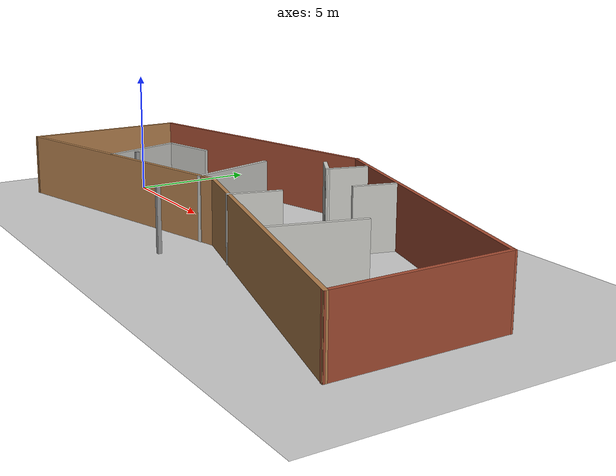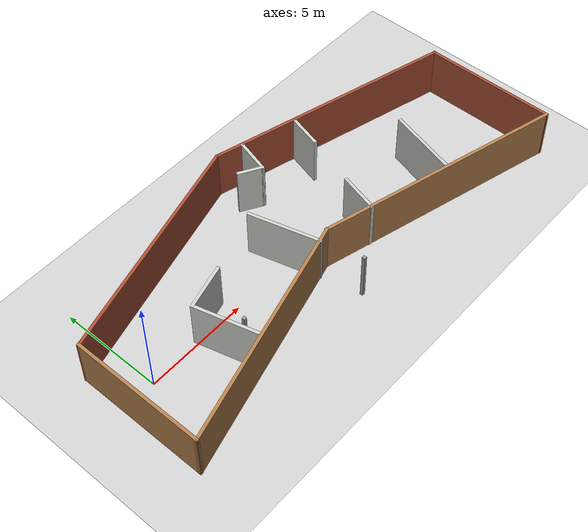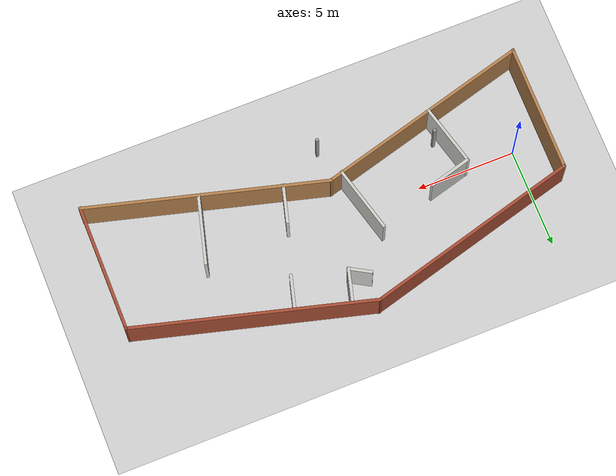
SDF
<sdf version="1.4">
 <world name="default">
  <light name="sun" type="directional">
   <pose>0 0 10 0 -0 0</pose>
   <diffuse>0.8 0.8 0.8 1</diffuse>
   <specular>0.1 0.1 0.1 1</specular>
   <attenuation>
    <range>1000</range>
    <constant>0.9</constant>
    <linear>0.01</linear>
    <quadratic>0.001</quadratic>
   </attenuation>
   <direction>-0.5 0.5 -1</direction>
  </light>
  <model name="ground_plane">
   <static>1</static>
   <link name="link">
    <collision name="collision">
     <geometry><plane><normal>0 0 1</normal><size>100 100</size></plane></geometry>
     <surface><friction><ode><mu>100</mu><mu2>50</mu2></ode></friction></surface>
    </collision>
    <visual name="visual">
     <cast_shadows>0</cast_shadows>
     <geometry><plane><normal>0 0 1</normal><size>100 100</size></plane></geometry>
     <material>
      <script><uri>file://media/materials/scripts/gazebo.material</uri><name>Gazebo/Grey</name></script>
     </material>
    </visual>
   </link>
  </model>
  <physics name="default_physics" default="0" type="ode"><real_time_factor>0</real_time_factor></physics>
  <scene><ambient>0.4 0.4 0.4 1</ambient><background>0.7 0.7 0.7 1</background><shadows>1</shadows></scene>
  <spherical_coordinates>
   <surface_model>EARTH_WGS84</surface_model>
   <latitude_deg>0</latitude_deg>
   <longitude_deg>0</longitude_deg>
   <elevation>0</elevation>
   <heading_deg>0</heading_deg>
  </spherical_coordinates>
  <model name="Maze">
   <pose>9.6093 0.288978 0 0 -0 0</pose>
   <link name="Wall_15">
    <collision name="Wall_15_Collision">
     <geometry><box><size>11.25 0.15 2.5</size></box></geometry>
     <pose>0 0 1.25 0 -0 0</pose>
    </collision>
    <visual name="Wall_15_Visual">
     <pose>0 0 1.25 0 -0 0</pose>
     <geometry><box><size>11.25 0.15 2.5</size></box></geometry>
     <material>
      <script><uri>file://media/materials/scripts/gazebo.material</uri><name>Gazebo/Wood</name></script>
      <ambient>1 1 1 1</ambient>
     </material>
    </visual>
    <pose>-5.84385 -3.04559 0 0 -0 0.261799</pose>
   </link>
   <link name="Wall_16">
    <collision name="Wall_16_Collision">
     <geometry><box><size>12.25 0.15 2.5</size></box></geometry>
     <pose>0 0 1.25 0 -0 0</pose>
    </collision>
    <visual name="Wall_16_Visual">
     <pose>0 0 1.25 0 -0 0</pose>
     <geometry><box><size>12.25 0.15 2.5</size></box></geometry>
     <material>
      <script><uri>file://media/materials/scripts/gazebo.material</uri><name>Gazebo/Wood</name></script>
      <ambient>1 1 1 1</ambient>
     </material>
    </visual>
    <pose>5.36089 -3.175 0 0 0 -0.261799</pose>
   </link>
   <link name="Wall_17">
    <collision name="Wall_17_Collision">
     <geometry><box><size>6.5 0.15 2.5</size></box></geometry>
     <pose>0 0 1.25 0 -0 0</pose>
    </collision>
    <visual name="Wall_17_Visual">
     <pose>0 0 1.25 0 -0 0</pose>
     <geometry><box><size>6.5 0.15 2.5</size></box></geometry>
     <material>
      <script><uri>file://media/materials/scripts/gazebo.material</uri><name>Gazebo/Bricks</name></script>
      <ambient>1 1 1 1</ambient>
     </material>
    </visual>
    <pose>11.2047 -1.56585 0 0 -0 1.5708</pose>
   </link>
   <link name="Wall_18">
    <collision name="Wall_18_Collision">
     <geometry><box><size>12.25 0.15 2.5</size></box></geometry>
     <pose>0 0 1.25 0 -0 0</pose>
    </collision>
    <visual name="Wall_18_Visual">
     <pose>0 0 1.25 0 -0 0</pose>
     <geometry><box><size>12.25 0.15 2.5</size></box></geometry>
     <material>
      <script><uri>file://media/materials/scripts/gazebo.material</uri><name>Gazebo/Bricks</name></script>
      <ambient>1 1 1 1</ambient>
     </material>
    </visual>
    <pose>5.36089 3.175 0 0 -0 2.87979</pose>
   </link>
   <link name="Wall_19">
    <collision name="Wall_19_Collision">
     <geometry><box><size>11.25 0.15 2.5</size></box></geometry>
     <pose>0 0 1.25 0 -0 0</pose>
    </collision>
    <visual name="Wall_19_Visual">
     <pose>0 0 1.25 0 -0 0</pose>
     <geometry><box><size>11.25 0.15 2.5</size></box></geometry>
     <material>
      <script><uri>file://media/materials/scripts/gazebo.material</uri><name>Gazebo/Bricks</name></script>
      <ambient>1 1 1 1</ambient>
     </material>
    </visual>
    <pose>-5.84385 3.30441 0 0 0 -2.87979</pose>
   </link>
   <link name="Wall_20">
    <collision name="Wall_20_Collision">
     <geometry><box><size>6.5 0.15 2.5</size></box></geometry>
     <pose>0 0 1.25 0 -0 0</pose>
    </collision>
    <visual name="Wall_20_Visual">
     <pose>0 0 1.25 0 -0 0</pose>
     <geometry><box><size>6.5 0.15 2.5</size></box></geometry>
     <material>
      <script><uri>file://media/materials/scripts/gazebo.material</uri><name>Gazebo/Wood</name></script>
      <ambient>1 1 1 1</ambient>
     </material>
    </visual>
    <pose>-11.2047 -1.30704 0 0 0 -1.5708</pose>
   </link>
   <link name="Wall_22">
    <collision name="Wall_22_Collision">
     <geometry><box><size>3.25 0.15 2.5</size></box></geometry>
     <pose>0 0 1.25 0 -0 0</pose>
    </collision>
    <visual name="Wall_22_Visual">
     <pose>0 0 1.25 0 -0 0</pose>
     <geometry><box><size>3.25 0.15 2.5</size></box></geometry>
     <material>
      <script><uri>file://media/materials/scripts/gazebo.material</uri><name>Gazebo/CeilingTiled</name></script>
      <ambient>1 1 1 1</ambient>
     </material>
    </visual>
    <pose>-6.59763 -1.63724 0 0 -0 1.8326</pose>
   </link>
   <link name="Wall_23">
    <collision name="Wall_23_Collision">
     <geometry><box><size>2.25 0.15 2.5</size></box></geometry>
     <pose>0 0 1.25 0 -0 0</pose>
    </collision>
    <visual name="Wall_23_Visual">
     <pose>0 0 1.25 0 -0 0</pose>
     <geometry><box><size>2.25 0.15 2.5</size></box></geometry>
     <material>
      <script><uri>file://media/materials/scripts/gazebo.material</uri><name>Gazebo/CeilingTiled</name></script>
      <ambient>1 1 1 1</ambient>
     </material>
    </visual>
    <pose>-5.98458 0.131703 0 0 -0 0.261799</pose>
   </link>
   <link name="Wall_25">
    <collision name="Wall_25_Collision">
     <geometry><box><size>3.5 0.15 2.5</size></box></geometry>
     <pose>0 0 1.25 0 -0 0</pose>
    </collision>
    <visual name="Wall_25_Visual">
     <pose>0 0 1.25 0 -0 0</pose>
     <geometry><box><size>3.5 0.15 2.5</size></box></geometry>
     <material>
      <script><uri>file://media/materials/scripts/gazebo.material</uri><name>Gazebo/CeilingTiled</name></script>
      <ambient>1 1 1 1</ambient>
     </material>
    </visual>
    <pose>-1.56136 -0.189005 0 0 -0 1.8326</pose>
   </link>
   <link name="Wall_27">
    <collision name="Wall_27_Collision">
     <geometry><box><size>1.75 0.15 2.5</size></box></geometry>
     <pose>0 0 1.25 0 -0 0</pose>
    </collision>
    <visual name="Wall_27_Visual">
     <pose>0 0 1.25 0 -0 0</pose>
     <geometry><box><size>1.75 0.15 2.5</size></box></geometry>
     <material>
      <script><uri>file://media/materials/scripts/gazebo.material</uri><name>Gazebo/CeilingTiled</name></script>
      <ambient>1 1 1 1</ambient>
     </material>
    </visual>
    <pose>0.55578 3.55497 0 0 0 -1.8326</pose>
   </link>
   <link name="Wall_28">
    <collision name="Wall_28_Collision">
     <geometry><box><size>1.25 0.15 2.5</size></box></geometry>
     <pose>0 0 1.25 0 -0 0</pose>
    </collision>
    <visual name="Wall_28_Visual">
     <pose>0 0 1.25 0 -0 0</pose>
     <geometry><box><size>1.25 0.15 2.5</size></box></geometry>
     <material>
      <script><uri>file://media/materials/scripts/gazebo.material</uri><name>Gazebo/CeilingTiled</name></script>
      <ambient>1 1 1 1</ambient>
     </material>
    </visual>
    <pose>-0.127589 3.05723 0 0 -0 2.61799</pose>
   </link>
   <link name="Wall_3">
    <collision name="Wall_3_Collision">
     <geometry><box><size>0.15 0.15 2.5</size></box></geometry>
     <pose>0 0 1.25 0 -0 0</pose>
    </collision>
    <visual name="Wall_3_Visual">
     <pose>0 0 1.25 0 -0 0</pose>
     <geometry><box><size>0.15 0.15 2.5</size></box></geometry>
     <material>
      <script><uri>file://media/materials/scripts/gazebo.material</uri><name>Gazebo/Grey</name></script>
      <ambient>1 1 1 1</ambient>
     </material>
    </visual>
    <pose>-0.619085 -3.74502 0 0 -0 0</pose>
   </link>
   <link name="Wall_30">
    <collision name="Wall_30_Collision">
     <geometry><box><size>2 0.15 2.5</size></box></geometry>
     <pose>0 0 1.25 0 -0 0</pose>
    </collision>
    <visual name="Wall_30_Visual">
     <pose>0 0 1.25 0 -0 0</pose>
     <geometry><box><size>2 0.15 2.5</size></box></geometry>
     <material>
      <script><uri>file://media/materials/scripts/gazebo.material</uri><name>Gazebo/CeilingTiled</name></script>
      <ambient>1 1 1 1</ambient>
     </material>
    </visual>
    <pose>1.96769 -1.33584 0 0 -0 1.309</pose>
   </link>
   <link name="Wall_32">
    <collision name="Wall_32_Collision">
     <geometry><box><size>1.75 0.15 2.5</size></box></geometry>
     <pose>0 0 1.25 0 -0 0</pose>
    </collision>
    <visual name="Wall_32_Visual">
     <pose>0 0 1.25 0 -0 0</pose>
     <geometry><box><size>1.75 0.15 2.5</size></box></geometry>
     <material>
      <script><uri>file://media/materials/scripts/gazebo.material</uri><name>Gazebo/CeilingTiled</name></script>
      <ambient>1 1 1 1</ambient>
     </material>
    </visual>
    <pose>3.23088 2.85099 0 0 0 -1.8326</pose>
   </link>
   <link name="Wall_34">
    <collision name="Wall_34_Collision">
     <geometry><box><size>3.5 0.15 2.5</size></box></geometry>
     <pose>0 0 1.25 0 -0 0</pose>
    </collision>
    <visual name="Wall_34_Visual">
     <pose>0 0 1.25 0 -0 0</pose>
     <geometry><box><size>3.5 0.15 2.5</size></box></geometry>
     <material>
      <script><uri>file://media/materials/scripts/gazebo.material</uri><name>Gazebo/CeilingTiled</name></script>
      <ambient>1 1 1 1</ambient>
     </material>
    </visual>
    <pose>6.1443 -1.59695 0 0 -0 1.309</pose>
   </link>
   <link name="Wall_8">
    <collision name="Wall_8_Collision">
     <geometry><box><size>0.15 0.15 2.5</size></box></geometry>
     <pose>0 0 1.25 0 -0 0</pose>
    </collision>
    <visual name="Wall_8_Visual">
     <pose>0 0 1.25 0 -0 0</pose>
     <geometry><box><size>0.15 0.15 2.5</size></box></geometry>
     <material>
      <script><uri>file://media/materials/scripts/gazebo.material</uri><name>Gazebo/Grey</name></script>
      <ambient>1 1 1 1</ambient>
     </material>
    </visual>
    <pose>-6.08621 -2.09793 0 0 -0 0</pose>
   </link>
   <static>1</static>
  </model>
 </world>
</sdf>
